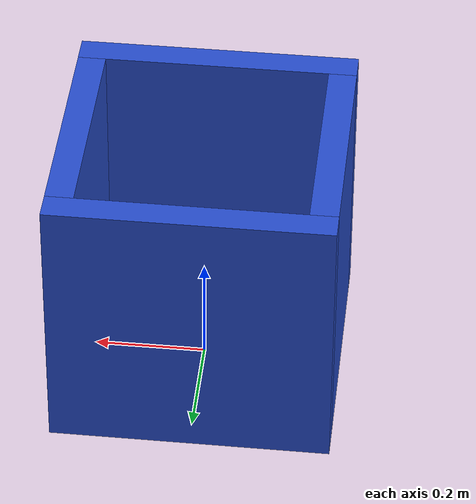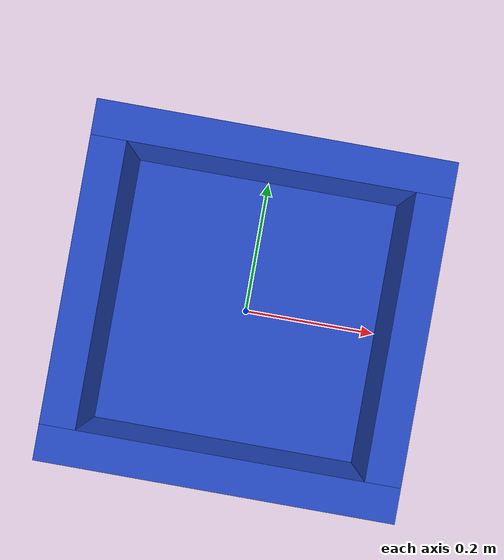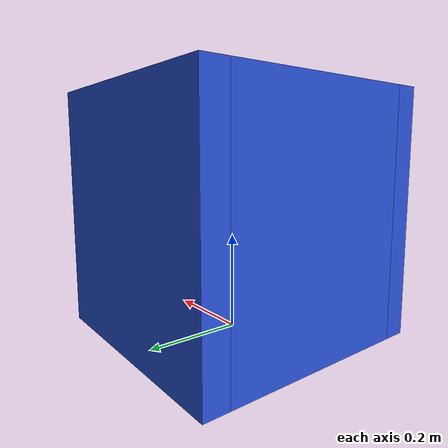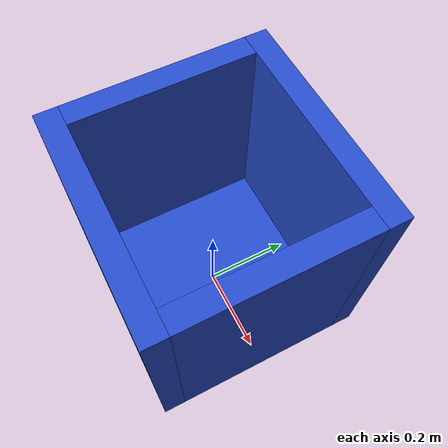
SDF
<?xml version='1.0'?>
<sdf version='1.6'>
  <model name='bin'>
    <link name="bottom">
      <pose>0 0 0.025 0 0 0</pose>
      <inertial>
        <mass>0.05</mass>
        <inertia>
          <ixx>0.001</ixx>
          <iyy>0.001</iyy>
          <izz>0.001</izz>
        </inertia>
      </inertial>
      <visual name='visual_bottom'>
        <geometry>
          <box>
            <size>0.4 0.4 0.05</size>
          </box>
        </geometry>
        <material>
          <script>
            <uri>file://media/materials/scripts/gazebo.material</uri>
            <name>Gazebo/Blue</name>
          </script>
        </material>
      </visual>
      <collision name='collision_bottom'>
        <geometry>
          <box>
            <size>0.4 0.4 0.05</size>
          </box>
        </geometry>
        <surface>
          <friction>
            <ode>
              <mu>10</mu>
              <mu2>10</mu2>
            </ode>
          </friction>
        </surface>
      </collision>
    </link>

    <link name="left">
      <pose>-0.225 0 0.25 0 0 0</pose>
      <inertial>
        <mass>0.05</mass>
        <inertia>
          <ixx>0.001</ixx>
          <iyy>0.001</iyy>
          <izz>0.001</izz>
        </inertia>
      </inertial>
      <visual name='visual_left'>
        <geometry>
          <box>
            <size>0.05 0.4 0.5</size>
          </box>
        </geometry>
        <material>
          <script>
            <uri>file://media/materials/scripts/gazebo.material</uri>
            <name>Gazebo/Blue</name>
          </script>
        </material>
      </visual>
      <collision name='collision_left'>
        <geometry>
          <box>
            <size>0.05 0.4 0.5</size>
          </box>
        </geometry>
        <surface>
          <friction>
            <ode>
              <mu>10</mu>
              <mu2>10</mu2>
            </ode>
          </friction>
        </surface>
      </collision>
    </link>

    <link name="right">
      <pose>0.225 0 0.25 0 0 0</pose>
      <inertial>
        <mass>0.05</mass>
        <inertia>
          <ixx>0.001</ixx>
          <iyy>0.001</iyy>
          <izz>0.001</izz>
        </inertia>
      </inertial>
      <visual name='visual_right'>
        <geometry>
          <box>
            <size>0.05 0.4 0.5</size>
          </box>
        </geometry>
        <material>
          <script>
            <uri>file://media/materials/scripts/gazebo.material</uri>
            <name>Gazebo/Blue</name>
          </script>
        </material>
      </visual>
      <collision name='collision_right'>
        <geometry>
          <box>
            <size>0.05 0.4 0.5</size>
          </box>
        </geometry>
        <surface>
          <friction>
            <ode>
              <mu>10</mu>
              <mu2>10</mu2>
            </ode>
          </friction>
        </surface>
      </collision>
    </link>

    <link name="back">
      <pose>0 0.225 0.25 0 0 0</pose>
      <inertial>
        <mass>0.05</mass>
        <inertia>
          <ixx>0.001</ixx>
          <iyy>0.001</iyy>
          <izz>0.001</izz>
        </inertia>
      </inertial>
      <visual name='visual_back'>
        <geometry>
          <box>
            <size>0.5 0.05 0.5</size>
          </box>
        </geometry>
        <material>
          <script>
            <uri>file://media/materials/scripts/gazebo.material</uri>
            <name>Gazebo/Blue</name>
          </script>
        </material>
      </visual>
      <collision name='collision_back'>
        <geometry>
          <box>
            <size>0.5 0.05 0.5</size>
          </box>
        </geometry>
        <surface>
          <friction>
            <ode>
              <mu>10</mu>
              <mu2>10</mu2>
            </ode>
          </friction>
        </surface>
      </collision>
    </link>

    <link name="front">
      <pose>0 -0.225 0.25 0 0 0</pose>
      <inertial>
        <mass>0.05</mass>
        <inertia>
          <ixx>0.001</ixx>
          <iyy>0.001</iyy>
          <izz>0.001</izz>
        </inertia>
      </inertial>
      <visual name='visual_front'>
        <geometry>
          <box>
            <size>0.5 0.05 0.5</size>
          </box>
        </geometry>
        <material>
          <script>
            <uri>file://media/materials/scripts/gazebo.material</uri>
            <name>Gazebo/Blue</name>
          </script>
        </material>
      </visual>
      <collision name='collision_front'>
        <geometry>
          <box>
            <size>0.5 0.05 0.5</size>
          </box>
        </geometry>
        <surface>
          <friction>
            <ode>
              <mu>10</mu>
              <mu2>10</mu2>
            </ode>
          </friction>
        </surface>
      </collision>
    </link>

    <joint name="left_joint" type="fixed">
      <parent>bottom</parent>
      <child>left</child>
    </joint>

    <joint name="right_joint" type="fixed">
      <parent>bottom</parent>
      <child>right</child>
    </joint>

    <joint name="back_joint" type="fixed">
      <parent>bottom</parent>
      <child>back</child>
    </joint>

    <joint name="front_joint" type="fixed">
      <parent>bottom</parent>
      <child>front</child>
    </joint>
    <static>1</static>

  </model>
</sdf>
